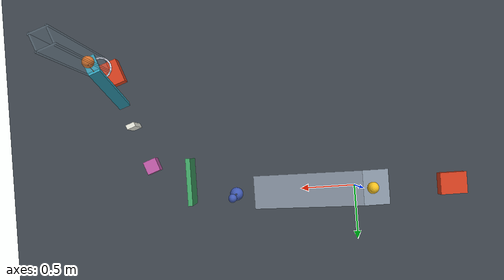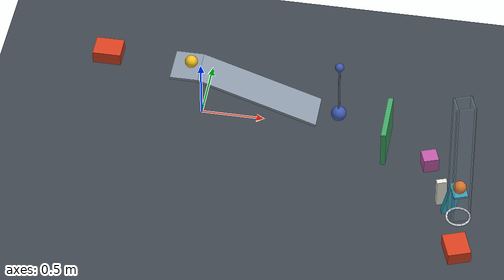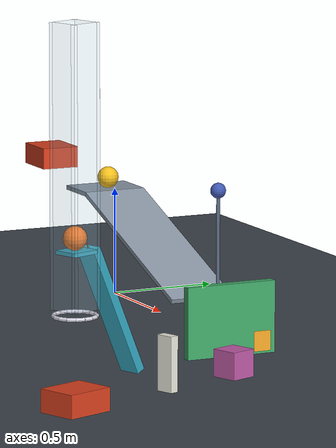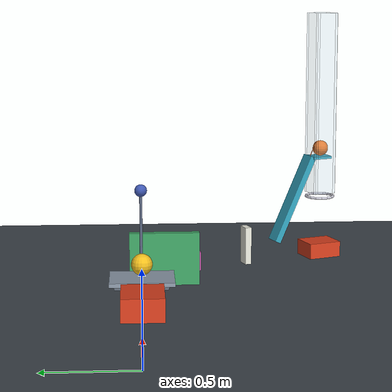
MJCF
<mujoco model="chain_with_stop_released_striker">
  <compiler angle="degree" autolimits="true"/>
  <option timestep="0.002" gravity="0 0 -9.81" integrator="implicitfast" solver="Newton" iterations="100" cone="elliptic" impratio="10" o_friction="0.68 0.68 0.005 0.002 0.002" o_solref="0.004 0.6901" o_solimp="0.95 0.99 0.001 0.5 2">
    <flag override="enable"/>
  </option>
  <size njmax="2000" nconmax="500"/>

  <!-- Global contact override supplies sliding friction 0.68. -->
  <!-- Damping ratio 0.6901 approximates restitution 0.05. -->
  <!-- Small rolling friction dissipates residual ball motion. -->
  <!-- All bodies start with zero velocity; there are no motors or timed controls. -->

  <worldbody>
    <light name="main_light" pos="1 -1 5" dir="0 0 -1" diffuse="0.9 0.9 0.9"/>
    <geom name="floor" type="plane" pos="0 0 0" size="6 6 0.1" condim="6" friction="0.68 0.005 0.002" rgba="0.24 0.27 0.30 1"/>

    <site name="cart1_spring_anchor" pos="-0.745 0 0.552020143" size="0.004" rgba="0.85 0.35 0.12 1"/>
    <site name="pendulum1_spring_anchor" pos="1.099692621 0 0.16" size="0.004" rgba="0.85 0.35 0.12 1"/>
    <site name="door1_spring_anchor" pos="1.501086426 -0.05 0.165" size="0.004" rgba="0.85 0.35 0.12 1"/>
    <site name="lever1_spring_anchor" pos="2.175490 -1.150338 0.760631115" size="0.004" rgba="0.85 0.35 0.12 1"/>

    <!-- Suspended axial slide avoids floor friction on cart1. -->
    <body name="cart1" pos="-0.735 0 0.552020143">
      <joint name="cart1_slide" type="slide" axis="1 0 0" damping="0.20" limited="true" range="0 0.72" solreflimit="0.004 1" solimplimit="0.99 0.999 0.0001"/>
      <geom name="cart1_box" type="box" size="0.11 0.09 0.05" mass="0.50" condim="6" friction="0.68 0.005 0.002" rgba="0.85 0.25 0.12 1"/>
      <site name="cart1_spring_site" pos="0 0 0" size="0.004" rgba="0.85 0.35 0.12 1"/>
    </body>

    <!-- Inclined surface is 1.00 m long, 0.30 m wide, and inclined 20 degrees. -->
    <!-- Low surface edge is at x=0.939692621, z=0.15. -->
    <body name="ramp1" pos="0 0 0">
      <geom name="ramp1_incline" type="box" pos="0.466426109 0 0.311613145" euler="0 20 0" size="0.50 0.15 0.01" condim="6" friction="0.68 0.005 0.002" rgba="0.55 0.60 0.66 1"/>
      <geom name="ramp1_staging_ledge" type="box" pos="-0.11 0 0.482020143" size="0.11 0.15 0.01" condim="6" friction="0.68 0.005 0.002" rgba="0.55 0.60 0.66 1"/>
    </body>

    <!-- Flat ledge prevents premature rolling. -->
    <!-- Initial cart-face to ball-surface separation is 0.50 m. -->
    <body name="ball1" pos="-0.075 0 0.542020143">
      <freejoint name="ball1_free"/>
      <geom name="ball1_sphere" type="sphere" size="0.05" mass="0.20" condim="6" friction="0.68 0.005 0.002" rgba="0.95 0.75 0.12 1"/>
    </body>

    <!-- Bob near surface is 0.10 m beyond the low ramp edge. -->
    <!-- Pivot-to-bob-centre length is 0.50 m; total rigid-body mass is 0.35 kg. -->
    <!-- There is no competing joint stop at its nominal 40-degree door contact. -->
    <body name="pendulum1" pos="1.099692621 0 0.66">
      <joint name="pendulum1_hinge" type="hinge" axis="0 -1 0" damping="0.04" frictionloss="0.001" limited="true" range="0 85" solreflimit="0.004 1" solimplimit="0.99 0.999 0.0001"/>
      <geom name="pendulum1_hub" type="sphere" size="0.035" mass="0.305" condim="6" friction="0.68 0.005 0.002" rgba="0.25 0.35 0.70 1"/>
      <geom name="pendulum1_rod" type="capsule" fromto="0 0 0 0 0 -0.50" size="0.008" mass="0.005" condim="6" friction="0.68 0.005 0.002" rgba="0.35 0.40 0.50 1"/>
      <geom name="pendulum1_bob" type="sphere" pos="0 0 -0.50" size="0.06" mass="0.040" condim="6" friction="0.68 0.005 0.002" rgba="0.25 0.35 0.70 1"/>
      <site name="pendulum1_spring_site" pos="0 0 -0.40" size="0.004" rgba="0.85 0.35 0.12 1"/>
    </body>

    <!-- Initial panel face meets the bob's rightmost extent at 40 degrees. -->
    <!-- Door rotates clockwise viewed from above and stops at 70 degrees. -->
    <body name="door1" pos="1.501086426 -0.35 0.005">
      <joint name="door1_hinge" type="hinge" axis="0 0 -1" damping="0.04" frictionloss="0.002" limited="true" range="0 70" solreflimit="0.004 1" solimplimit="0.99 0.999 0.0001"/>
      <geom name="door1_panel" type="box" pos="0 0.21 0.16" size="0.02 0.21 0.16" mass="0.45" condim="6" friction="0.68 0.005 0.002" rgba="0.25 0.65 0.40 1"/>
      <site name="door1_spring_site" pos="0 0.20 0.16" size="0.004" rgba="0.85 0.35 0.12 1"/>

      <!-- Auxiliary inertial striker: the lower slide stop carries it during acceleration. -->
      <!-- When door1 stops, positive slide travel allows the striker to continue forward. -->
      <!-- Parent-child collision filtering prevents contact with the containing panel. -->
      <body name="door1_striker" pos="0 0.36 0.055">
        <joint name="door1_striker_slide" type="slide" axis="1 0 0" damping="0.20" limited="true" range="0 0.12" solreflimit="0.004 1" solimplimit="0.99 0.999 0.0001"/>
        <geom name="door1_striker_box" type="box" size="0.02 0.04 0.045" mass="0.20" condim="6" friction="0.68 0.005 0.002" rgba="0.95 0.65 0.15 1"/>
      </body>
    </body>

    <!-- Nominal panel and striker contact begins at door angle 70 degrees. -->
    <!-- Downstream direction is (0.342020143, -0.939692621, 0). -->
    <body name="block1" pos="1.866737380 -0.302048161 0.06" euler="0 0 -70">
      <freejoint name="block1_free"/>
      <geom name="block1_cube" type="box" size="0.06 0.06 0.06" mass="0.35" condim="6" friction="0.68 0.005 0.002" rgba="0.75 0.35 0.65 1"/>
    </body>

    <!-- Initial face-to-face block-to-domino gap is 0.32 m. -->
    <body name="domino1" pos="2.003545437 -0.677925209 0.12" euler="0 0 -70">
      <freejoint name="domino1_free"/>
      <geom name="domino1_box" type="box" size="0.02 0.04 0.12" mass="0.25" condim="6" friction="0.68 0.005 0.002" rgba="0.92 0.92 0.87 1"/>
    </body>

    <!-- Lever starts 65 degrees above horizontal, with its left end reachable from the floor. -->
    <!-- Geometry targets 0.18 m horizontal travel of the domino's upper front corner. -->
    <!-- That target assumes tipping about its lower front edge rather than sliding. -->
    <body name="lever1" pos="2.117672 -0.991486 0.398108" xyaxes="0.144543958 -0.397131262 0.906307787 0.939692621 0.342020143 0">
      <inertial pos="0 0 0" mass="0.50" diaginertia="0.000483333 0.015066667 0.015416667"/>
      <joint name="lever1_hinge" type="hinge" axis="0 -1 0" damping="0.04" limited="true" range="0 45" solreflimit="0.004 1" solimplimit="0.99 0.999 0.0001"/>
      <geom name="lever1_beam" type="box" size="0.30 0.05 0.02" condim="6" friction="0.68 0.005 0.002" rgba="0.20 0.65 0.75 1"/>
      <geom name="lever1_launch_shelf" type="box" pos="0.320219 0 -0.062291" xyaxes="0.422618262 0 -0.906307787 0 1 0" size="0.065 0.055 0.008" condim="6" friction="0.68 0.005 0.002" rgba="0.20 0.65 0.75 1"/>
      <site name="lever1_spring_site" pos="0.30 0 0" size="0.004" rgba="0.85 0.35 0.12 1"/>
    </body>

    <body name="ball2" pos="2.186687 -1.181102 0.72">
      <freejoint name="ball2_free"/>
      <geom name="ball2_sphere" type="sphere" size="0.05" mass="0.20" contype="4" conaffinity="5" condim="6" friction="0.68 0.005 0.002" rgba="0.95 0.45 0.10 1"/>
    </body>

    <!-- Ring centre is 0.32 m below ball2's initial centre. -->
    <!-- Polygon chord compensation gives approximately 0.16 m minimum clear diameter. -->
    <!-- Guides collide with ball2 but not with the launching lever. -->
    <body name="ring1" pos="2.186687 -1.181102 0.40">
      <geom name="ring1_segment_00" type="capsule" fromto="0.089724 0 0 0.082894 0.034336 0" size="0.008" contype="4" conaffinity="4" condim="6" friction="0.68 0.005 0.002" rgba="0.85 0.85 0.90 1"/>
      <geom name="ring1_segment_01" type="capsule" fromto="0.082894 0.034336 0 0.063444 0.063444 0" size="0.008" contype="4" conaffinity="4" condim="6" friction="0.68 0.005 0.002" rgba="0.85 0.85 0.90 1"/>
      <geom name="ring1_segment_02" type="capsule" fromto="0.063444 0.063444 0 0.034336 0.082894 0" size="0.008" contype="4" conaffinity="4" condim="6" friction="0.68 0.005 0.002" rgba="0.85 0.85 0.90 1"/>
      <geom name="ring1_segment_03" type="capsule" fromto="0.034336 0.082894 0 0 0.089724 0" size="0.008" contype="4" conaffinity="4" condim="6" friction="0.68 0.005 0.002" rgba="0.85 0.85 0.90 1"/>
      <geom name="ring1_segment_04" type="capsule" fromto="0 0.089724 0 -0.034336 0.082894 0" size="0.008" contype="4" conaffinity="4" condim="6" friction="0.68 0.005 0.002" rgba="0.85 0.85 0.90 1"/>
      <geom name="ring1_segment_05" type="capsule" fromto="-0.034336 0.082894 0 -0.063444 0.063444 0" size="0.008" contype="4" conaffinity="4" condim="6" friction="0.68 0.005 0.002" rgba="0.85 0.85 0.90 1"/>
      <geom name="ring1_segment_06" type="capsule" fromto="-0.063444 0.063444 0 -0.082894 0.034336 0" size="0.008" contype="4" conaffinity="4" condim="6" friction="0.68 0.005 0.002" rgba="0.85 0.85 0.90 1"/>
      <geom name="ring1_segment_07" type="capsule" fromto="-0.082894 0.034336 0 -0.089724 0 0" size="0.008" contype="4" conaffinity="4" condim="6" friction="0.68 0.005 0.002" rgba="0.85 0.85 0.90 1"/>
      <geom name="ring1_segment_08" type="capsule" fromto="-0.089724 0 0 -0.082894 -0.034336 0" size="0.008" contype="4" conaffinity="4" condim="6" friction="0.68 0.005 0.002" rgba="0.85 0.85 0.90 1"/>
      <geom name="ring1_segment_09" type="capsule" fromto="-0.082894 -0.034336 0 -0.063444 -0.063444 0" size="0.008" contype="4" conaffinity="4" condim="6" friction="0.68 0.005 0.002" rgba="0.85 0.85 0.90 1"/>
      <geom name="ring1_segment_10" type="capsule" fromto="-0.063444 -0.063444 0 -0.034336 -0.082894 0" size="0.008" contype="4" conaffinity="4" condim="6" friction="0.68 0.005 0.002" rgba="0.85 0.85 0.90 1"/>
      <geom name="ring1_segment_11" type="capsule" fromto="-0.034336 -0.082894 0 0 -0.089724 0" size="0.008" contype="4" conaffinity="4" condim="6" friction="0.68 0.005 0.002" rgba="0.85 0.85 0.90 1"/>
      <geom name="ring1_segment_12" type="capsule" fromto="0 -0.089724 0 0.034336 -0.082894 0" size="0.008" contype="4" conaffinity="4" condim="6" friction="0.68 0.005 0.002" rgba="0.85 0.85 0.90 1"/>
      <geom name="ring1_segment_13" type="capsule" fromto="0.034336 -0.082894 0 0.063444 -0.063444 0" size="0.008" contype="4" conaffinity="4" condim="6" friction="0.68 0.005 0.002" rgba="0.85 0.85 0.90 1"/>
      <geom name="ring1_segment_14" type="capsule" fromto="0.063444 -0.063444 0 0.082894 -0.034336 0" size="0.008" contype="4" conaffinity="4" condim="6" friction="0.68 0.005 0.002" rgba="0.85 0.85 0.90 1"/>
      <geom name="ring1_segment_15" type="capsule" fromto="0.082894 -0.034336 0 0.089724 0 0" size="0.008" contype="4" conaffinity="4" condim="6" friction="0.68 0.005 0.002" rgba="0.85 0.85 0.90 1"/>
      <geom name="ring1_guide_forward" type="box" pos="0.021547 -0.059201 0.6125" xyaxes="0.342020143 -0.939692621 0 0.939692621 0.342020143 0" size="0.006 0.075 0.5875" contype="4" conaffinity="4" condim="6" friction="0.68 0.005 0.002" rgba="0.65 0.80 0.90 0.18"/>
      <geom name="ring1_guide_backward" type="box" pos="-0.021547 0.059201 0.6125" xyaxes="0.342020143 -0.939692621 0 0.939692621 0.342020143 0" size="0.006 0.075 0.5875" contype="4" conaffinity="4" condim="6" friction="0.68 0.005 0.002" rgba="0.65 0.80 0.90 0.18"/>
      <geom name="ring1_guide_left" type="box" pos="0.059201 0.021547 0.6125" xyaxes="0.342020143 -0.939692621 0 0.939692621 0.342020143 0" size="0.075 0.006 0.5875" contype="4" conaffinity="4" condim="6" friction="0.68 0.005 0.002" rgba="0.65 0.80 0.90 0.18"/>
      <geom name="ring1_guide_right" type="box" pos="-0.059201 -0.021547 0.6125" xyaxes="0.342020143 -0.939692621 0 0.939692621 0.342020143 0" size="0.075 0.006 0.5875" contype="4" conaffinity="4" condim="6" friction="0.68 0.005 0.002" rgba="0.65 0.80 0.90 0.18"/>
    </body>

    <!-- At top contact, ball2's centre is z=0.15, 0.25 m below the ring plane. -->
    <body name="cart2" pos="2.186687 -1.181102 0.05" euler="0 0 -70">
      <joint name="cart2_slide" type="slide" axis="1 0 0" damping="0.20" limited="true" range="-0.5 0.5" solreflimit="0.004 1" solimplimit="0.99 0.999 0.0001"/>
      <geom name="cart2_box" type="box" size="0.11 0.09 0.05" mass="0.50" condim="6" friction="0.68 0.005 0.002" rgba="0.85 0.25 0.12 1"/>
    </body>
  </worldbody>

  <tendon>
    <!-- Initial length 0.01 m and relaxed minimum 0.21 m give 0.20 m compression. -->
    <!-- The dead band disengages the spring after decompression, permitting coasting. -->
    <spatial name="cart1_axial_spring" stiffness="18" damping="0" springlength="0.21 2" width="0.003" rgba="0.85 0.35 0.12 1">
      <site site="cart1_spring_anchor"/>
      <site site="cart1_spring_site"/>
    </spatial>

    <!-- Explicit auxiliary passive energy stores, not specified by the brief. -->
    <!-- Initial collinearity gives zero spring torque; contact initiates motion. -->
    <spatial name="pendulum1_overcentre_spring" stiffness="30" damping="0" springlength="0.22 2" width="0.002" rgba="0.85 0.35 0.12 1">
      <site site="pendulum1_spring_anchor"/>
      <site site="pendulum1_spring_site"/>
    </spatial>
    <spatial name="door1_overcentre_spring" stiffness="190" damping="0" springlength="0.50 2" width="0.002" rgba="0.85 0.35 0.12 1">
      <site site="door1_spring_anchor"/>
      <site site="door1_spring_site"/>
    </spatial>
    <spatial name="lever1_overcentre_spring" stiffness="200" damping="0" springlength="0.35 2" width="0.002" rgba="0.85 0.35 0.12 1">
      <site site="lever1_spring_anchor"/>
      <site site="lever1_spring_site"/>
    </spatial>
  </tendon>

  <!-- Default key positions are initial model poses; default velocities are zero. -->
  <keyframe>
    <key name="start" time="0"/>
  </keyframe>
</mujoco>
